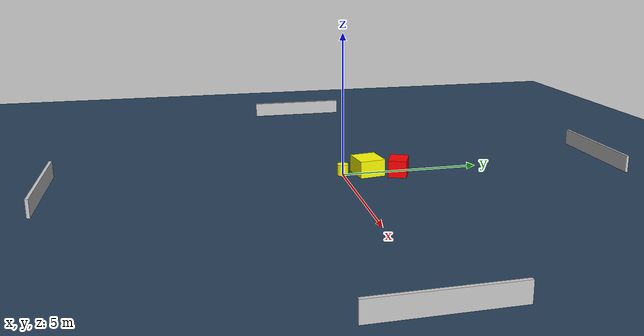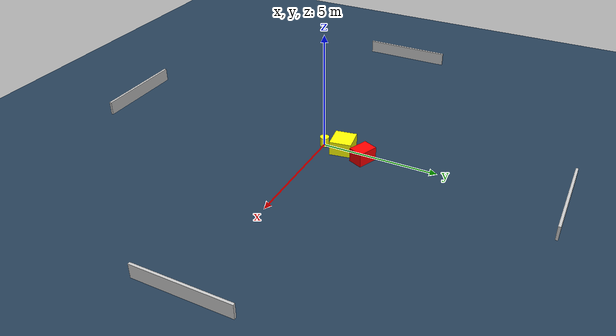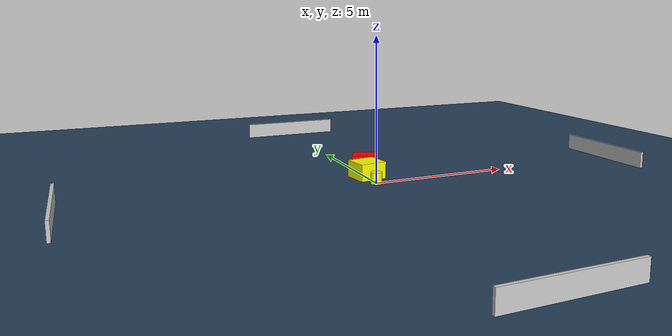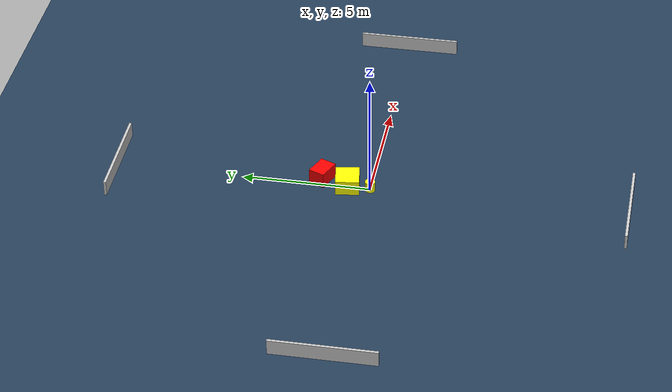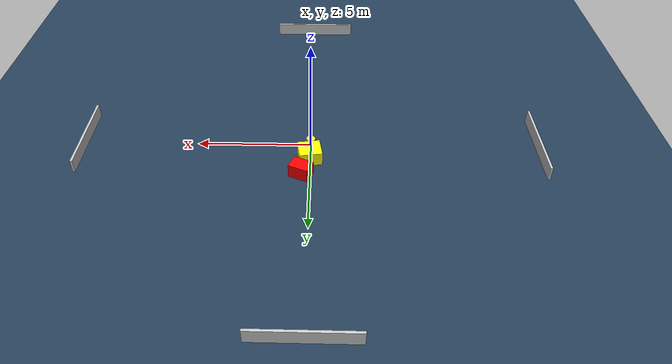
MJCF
<?xml version="1.0" ?>
<mujoco model="generated_environment">
  <option timestep="0.01" integrator="RK4" cone="elliptic"/>
  <default>
    <geom density="1"/>
  </default>
  <asset>
    <texture builtin="gradient" height="3072" name="skybox" rgb1="0.3 0.5 0.7" rgb2="0 0 0" type="skybox" width="512"/>
    <texture builtin="checker" height="300" name="groundplane" rgb1="0.2 0.3 0.4" rgb2="0.1 0.2 0.3" type="2d" width="300"/>
    <material name="groundplane" reflectance="0.2" texrepeat="5 5" texture="groundplane"/>
  </asset>
  <worldbody>
    <light dir="0 0 -1" directional="true" pos="0 0 1.5"/>
    <geom condim="3" friction="0.5 0.005 0.001" material="groundplane" name="floor" pos="0 0 0" size="0 0 0.05" type="plane"/>
    <body name="walls">
      <geom name="wall_1" condim="4" pos="-10.0 0.0 0.3" rgba="0.800000011920929 0.800000011920929 0.800000011920929 1.0" size="0.05 2.0 0.3" type="box"/>
      <geom name="wall_2" condim="4" pos="10.0 0.0 0.3" rgba="0.800000011920929 0.800000011920929 0.800000011920929 1.0" size="0.05 2.0 0.3" type="box"/>
      <geom name="wall_3" condim="4" pos="0.0 -10.0 0.3" rgba="0.800000011920929 0.800000011920929 0.800000011920929 1.0" size="2.0 0.05 0.3" type="box"/>
      <geom name="wall_4" condim="4" pos="0.0 10.0 0.3" rgba="0.800000011920929 0.800000011920929 0.800000011920929 1.0" size="2.0 0.05 0.3" type="box"/>
    </body>
    <body name="robot">
      <joint name="joint_x" type="slide" pos="0 0 0" axis="1 0 0"/>
      <joint name="joint_y" type="slide" pos="0 0 0" axis="0 1 0"/>
      <geom name="robot" type="cylinder" pos="0.0 0.0 0.2" size="0.2 0.2 0.0" mass="5.0" friction="1.0 0.005 0.0001" condim="4" rgba="1.0 1.0 0.0 1.0"/>
    </body>
    <body name="obstacle_1_movable">
      <geom name="obstacle_1_movable" condim="4" pos="0.03608580442814247 0.8943101544765814 0.3" euler="0 0 98.80509621195961" friction="0.0 0.005 0.001" rgba="1.0 1.0 0.0 1.0" size="0.46287706783761307 0.49366423766095263 0.3" type="box" mass="0.1"/>
      <joint type="free"/>
    </body>
    <body name="obstacle_2_static">
      <geom name="obstacle_2_static" condim="4" pos="0.3800658438371483 1.9391586144450568 0.3" euler="0 0 156.61804720912778" friction="0.0 0.005 0.001" rgba="1.0 0.0 0.0 1.0" size="0.4357229326502121 0.32418711398100253 0.3" type="box"/>
    </body>
  </worldbody>
  <actuator>
    <motor name="actuator_x" joint="joint_x" gear="1" ctrlrange="-1 1"/>
    <motor name="actuator_y" joint="joint_y" gear="1" ctrlrange="-1 1"/>
  </actuator>
</mujoco>
